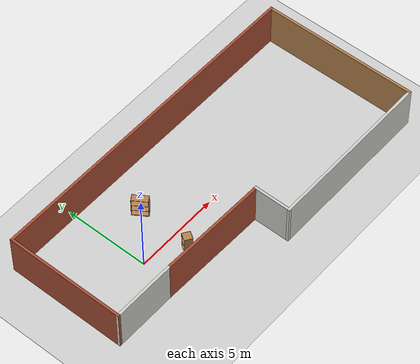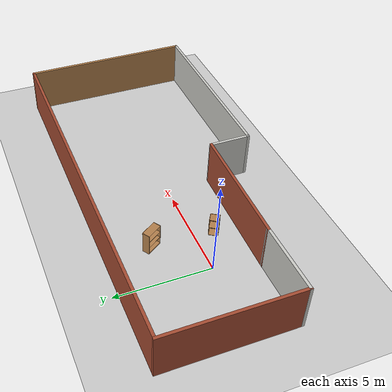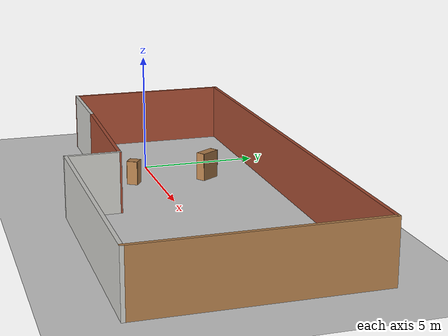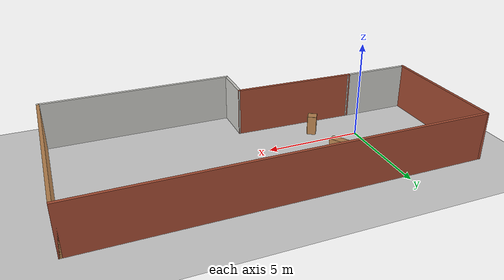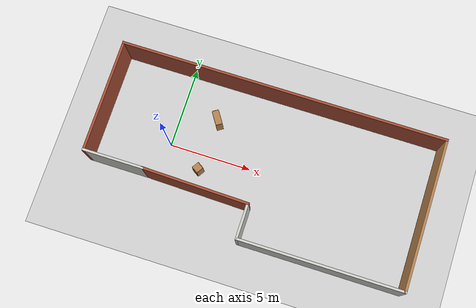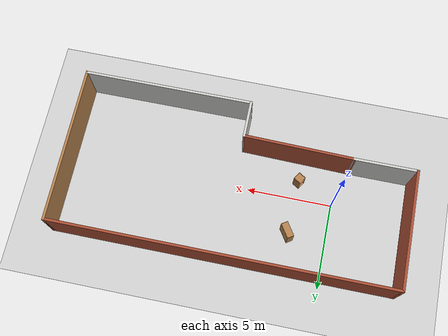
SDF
<sdf version="1.6">
 <world name="default">
  <light name="sun" type="directional">
   <pose>0 0 10 0 -0 0</pose>
   <diffuse>0.8 0.8 0.8 1</diffuse>
   <specular>0.2 0.2 0.2 1</specular>
   <attenuation>
    <range>1000</range>
    <constant>0.9</constant>
    <linear>0.01</linear>
    <quadratic>0.001</quadratic>
   </attenuation>
   <direction>-0.5 0.1 -0.9</direction>
  </light>
  <model name="ground_plane">
   <static>1</static>
   <link name="link">
    <collision name="collision">
     <geometry><plane><normal>0 0 1</normal><size>100 100</size></plane></geometry>
     <surface><friction><ode><mu>100</mu><mu2>50</mu2></ode></friction></surface>
    </collision>
    <visual name="visual">
     <cast_shadows>0</cast_shadows>
     <geometry><plane><normal>0 0 1</normal><size>100 100</size></plane></geometry>
     <material>
      <script><uri>file://media/materials/scripts/gazebo.material</uri><name>Gazebo/Grey</name></script>
     </material>
    </visual>
   </link>
  </model>
  <gravity>0 0 -9.8</gravity>
  <magnetic_field>6e-06 2.3e-05 -4.2e-05</magnetic_field>
  <atmosphere type="adiabatic"/>
  <physics name="default_physics" default="0" type="ode">
   <max_step_size>0.001</max_step_size>
   <real_time_factor>1</real_time_factor>
   <real_time_update_rate>1000</real_time_update_rate>
  </physics>
  <scene><ambient>0.4 0.4 0.4 1</ambient><background>0.7 0.7 0.7 1</background><shadows>1</shadows></scene>
  <spherical_coordinates>
   <surface_model>EARTH_WGS84</surface_model>
   <latitude_deg>0</latitude_deg>
   <longitude_deg>0</longitude_deg>
   <elevation>0</elevation>
   <heading_deg>0</heading_deg>
  </spherical_coordinates>
  <model name="111">
   <pose>5.655 0.06 0 0 -0 0</pose>
   <link name="Wall_0">
    <collision name="Wall_0_Collision">
     <geometry><box><size>3.75 0.15 2.5</size></box></geometry>
     <pose>0 0 1.25 0 -0 0</pose>
    </collision>
    <visual name="Wall_0_Visual">
     <pose>0 0 1.25 0 -0 0</pose>
     <geometry><box><size>3.75 0.15 2.5</size></box></geometry>
     <material>
      <script><uri>file://media/materials/scripts/gazebo.material</uri><name>Gazebo/CeilingTiled</name></script>
      <ambient>1 1 1 1</ambient>
     </material>
     <meta><layer>0</layer></meta>
    </visual>
    <pose>-8.125 -2.3 0 0 -0 3.14159</pose>
   </link>
   <link name="Wall_3">
    <collision name="Wall_3_Collision">
     <geometry><box><size>7 0.15 2.5</size></box></geometry>
     <pose>0 0 1.25 0 -0 0</pose>
    </collision>
    <visual name="Wall_3_Visual">
     <pose>0 0 1.25 0 -0 0</pose>
     <geometry><box><size>7 0.15 2.5</size></box></geometry>
     <material>
      <script><uri>file://media/materials/scripts/gazebo.material</uri><name>Gazebo/Bricks</name></script>
      <ambient>1 1 1 1</ambient>
     </material>
     <meta><layer>0</layer></meta>
    </visual>
    <pose>-9.925 1.125 0 0 -0 1.5708</pose>
   </link>
   <link name="Wall_4">
    <collision name="Wall_4_Collision">
     <geometry><box><size>20 0.15 2.5</size></box></geometry>
     <pose>0 0 1.25 0 -0 0</pose>
    </collision>
    <visual name="Wall_4_Visual">
     <pose>0 0 1.25 0 -0 0</pose>
     <geometry><box><size>20 0.15 2.5</size></box></geometry>
     <material>
      <script><uri>file://media/materials/scripts/gazebo.material</uri><name>Gazebo/Bricks</name></script>
      <ambient>1 1 1 1</ambient>
     </material>
     <meta><layer>0</layer></meta>
    </visual>
    <pose>0 4.55 0 0 -0 0</pose>
   </link>
   <link name="Wall_5">
    <collision name="Wall_5_Collision">
     <geometry><box><size>9.25 0.15 2.5</size></box></geometry>
     <pose>0 0 1.25 0 -0 0</pose>
    </collision>
    <visual name="Wall_5_Visual">
     <pose>0 0 1.25 0 -0 0</pose>
     <geometry><box><size>9.25 0.15 2.5</size></box></geometry>
     <material>
      <script><uri>file://media/materials/scripts/gazebo.material</uri><name>Gazebo/Wood</name></script>
      <ambient>1 1 1 1</ambient>
     </material>
     <meta><layer>0</layer></meta>
    </visual>
    <pose>9.925 0 0 0 -0 -1.5708</pose>
   </link>
   <link name="Wall_6">
    <collision name="Wall_6_Collision">
     <geometry><box><size>10 0.15 2.5</size></box></geometry>
     <pose>0 0 1.25 0 -0 0</pose>
    </collision>
    <visual name="Wall_6_Visual">
     <pose>0 0 1.25 0 -0 0</pose>
     <geometry><box><size>10 0.15 2.5</size></box></geometry>
     <material>
      <script><uri>file://media/materials/scripts/gazebo.material</uri><name>Gazebo/CeilingTiled</name></script>
      <ambient>1 1 1 1</ambient>
     </material>
     <meta><layer>0</layer></meta>
    </visual>
    <pose>5 -4.55 0 0 -0 3.14159</pose>
   </link>
   <link name="Wall_7">
    <collision name="Wall_7_Collision">
     <geometry><box><size>2.25 0.15 2.5</size></box></geometry>
     <pose>0 0 1.25 0 -0 0</pose>
    </collision>
    <visual name="Wall_7_Visual">
     <pose>0 0 1.25 0 -0 0</pose>
     <geometry><box><size>2.25 0.15 2.5</size></box></geometry>
     <material>
      <script><uri>file://media/materials/scripts/gazebo.material</uri><name>Gazebo/CeilingTiled</name></script>
      <ambient>1 1 1 1</ambient>
     </material>
     <meta><layer>0</layer></meta>
    </visual>
    <pose>0.075 -3.5 0 0 -0 1.5708</pose>
   </link>
   <link name="Wall_8">
    <collision name="Wall_8_Collision">
     <geometry><box><size>6.55176 0.15 2.5</size></box></geometry>
     <pose>0 0 1.25 0 -0 0</pose>
    </collision>
    <visual name="Wall_8_Visual">
     <pose>0 0 1.25 0 -0 0</pose>
     <geometry><box><size>6.55176 0.15 2.5</size></box></geometry>
     <material>
      <script><uri>file://media/materials/scripts/gazebo.material</uri><name>Gazebo/Bricks</name></script>
      <ambient>1 1 1 1</ambient>
     </material>
     <meta><layer>0</layer></meta>
    </visual>
    <pose>-3.125 -2.375 0 0 -0 3.11816</pose>
   </link>
   <static>1</static>
  </model>
  <model name="bookshelf">
   <static>1</static>
   <link name="link">
    <inertial><mass>1</mass></inertial>
    <collision name="back">
     <pose>0 0.005 0.6 0 -0 0</pose>
     <geometry><box><size>0.9 0.01 1.2</size></box></geometry>
    </collision>
    <visual name="visual1">
     <pose>0 0.005 0.6 0 -0 0</pose>
     <geometry><box><size>0.9 0.01 1.2</size></box></geometry>
     <material>
      <script><uri>file://media/materials/scripts/gazebo.material</uri><name>Gazebo/Wood</name></script>
     </material>
    </visual>
    <collision name="left_side">
     <pose>0.45 -0.195 0.6 0 -0 0</pose>
     <geometry><box><size>0.02 0.4 1.2</size></box></geometry>
    </collision>
    <visual name="visual2">
     <pose>0.45 -0.195 0.6 0 -0 0</pose>
     <geometry><box><size>0.02 0.4 1.2</size></box></geometry>
     <material>
      <script><uri>file://media/materials/scripts/gazebo.material</uri><name>Gazebo/Wood</name></script>
     </material>
    </visual>
    <collision name="right_side">
     <pose>-0.45 -0.195 0.6 0 -0 0</pose>
     <geometry><box><size>0.02 0.4 1.2</size></box></geometry>
    </collision>
    <visual name="visual3">
     <pose>-0.45 -0.195 0.6 0 -0 0</pose>
     <geometry><box><size>0.02 0.4 1.2</size></box></geometry>
     <material>
      <script><uri>file://media/materials/scripts/gazebo.material</uri><name>Gazebo/Wood</name></script>
     </material>
    </visual>
    <collision name="bottom">
     <pose>0 -0.195 0.03 0 -0 0</pose>
     <geometry><box><size>0.88 0.4 0.06</size></box></geometry>
    </collision>
    <visual name="visual4">
     <pose>0 -0.195 0.03 0 -0 0</pose>
     <geometry><box><size>0.88 0.4 0.06</size></box></geometry>
     <material>
      <script><uri>file://media/materials/scripts/gazebo.material</uri><name>Gazebo/Wood</name></script>
     </material>
    </visual>
    <collision name="top">
     <pose>0 -0.195 1.19 0 -0 0</pose>
     <geometry><box><size>0.88 0.4 0.02</size></box></geometry>
    </collision>
    <visual name="visual5">
     <pose>0 -0.195 1.19 0 -0 0</pose>
     <geometry><box><size>0.88 0.4 0.02</size></box></geometry>
     <material>
      <script><uri>file://media/materials/scripts/gazebo.material</uri><name>Gazebo/Wood</name></script>
     </material>
    </visual>
    <collision name="low_shelf">
     <pose>0 -0.195 0.43 0 -0 0</pose>
     <geometry><box><size>0.88 0.4 0.02</size></box></geometry>
    </collision>
    <visual name="visual6">
     <pose>0 -0.195 0.43 0 -0 0</pose>
     <geometry><box><size>0.88 0.4 0.02</size></box></geometry>
     <material>
      <script><uri>file://media/materials/scripts/gazebo.material</uri><name>Gazebo/Wood</name></script>
     </material>
    </visual>
    <collision name="high_shelf">
     <pose>0 -0.195 0.8 0 -0 0</pose>
     <geometry><box><size>0.88 0.4 0.02</size></box></geometry>
    </collision>
    <visual name="visual7">
     <pose>0 -0.195 0.8 0 -0 0</pose>
     <geometry><box><size>0.88 0.4 0.02</size></box></geometry>
     <material>
      <script><uri>file://media/materials/scripts/gazebo.material</uri><name>Gazebo/Wood</name></script>
     </material>
    </visual>
   </link>
   <pose>2.45203 2.32912 0 0 0 -0.989317</pose>
  </model>
  <model name="cabinet">
   <static>1</static>
   <link name="cabinet_bottom_plate">
    <inertial>
     <pose>0 0 -1 0 -0 0</pose>
     <inertia><ixx>2.05</ixx><ixy>0</ixy><ixz>0</ixz><iyy>2.05</iyy><iyz>0</iyz><izz>2.05</izz></inertia>
     <mass>25</mass>
    </inertial>
    <collision name="cabinet_bottom_plate_geom">
     <pose>0 0 0.01 0 -0 0</pose>
     <geometry><box><size>0.45 0.45 0.02</size></box></geometry>
    </collision>
    <visual name="cabinet_bottom_plate_geom_visual">
     <pose>0 0 0.01 0 -0 0</pose>
     <geometry><box><size>0.45 0.45 0.02</size></box></geometry>
     <material>
      <script><uri>file://media/materials/scripts/gazebo.material</uri><name>Gazebo/Wood</name></script>
     </material>
    </visual>
    <collision name="cabinet_bottom_plate_geom_cabinet_back_plate">
     <pose>0.235 0 0.51 0 -0 0</pose>
     <geometry><box><size>0.02 0.45 1.02</size></box></geometry>
    </collision>
    <visual name="cabinet_bottom_plate_geom_cabinet_back_plate_visual">
     <pose>0.235 0 0.51 0 -0 0</pose>
     <geometry><box><size>0.02 0.45 1.02</size></box></geometry>
     <material>
      <script><uri>file://media/materials/scripts/gazebo.material</uri><name>Gazebo/Wood</name></script>
     </material>
    </visual>
    <collision name="cabinet_bottom_plate_geom_cabinet_left_plate">
     <pose>0 0.235 0.51 0 -0 0</pose>
     <geometry><box><size>0.45 0.02 1.02</size></box></geometry>
    </collision>
    <visual name="cabinet_bottom_plate_geom_cabinet_left_plate_visual">
     <pose>0 0.235 0.51 0 -0 0</pose>
     <geometry><box><size>0.45 0.02 1.02</size></box></geometry>
     <material>
      <script><uri>file://media/materials/scripts/gazebo.material</uri><name>Gazebo/Wood</name></script>
     </material>
    </visual>
    <collision name="cabinet_bottom_plate_geom_cabinet_middle_plate">
     <pose>0 0 0.51 0 -0 0</pose>
     <geometry><box><size>0.45 0.45 0.02</size></box></geometry>
    </collision>
    <visual name="cabinet_bottom_plate_geom_cabinet_middle_plate_visual">
     <pose>0 0 0.51 0 -0 0</pose>
     <geometry><box><size>0.45 0.45 0.02</size></box></geometry>
     <material>
      <script><uri>file://media/materials/scripts/gazebo.material</uri><name>Gazebo/Wood</name></script>
     </material>
    </visual>
    <collision name="cabinet_bottom_plate_geom_cabinet_right_plate">
     <pose>0 -0.235 0.51 0 -0 0</pose>
     <geometry><box><size>0.45 0.02 1.02</size></box></geometry>
    </collision>
    <visual name="cabinet_bottom_plate_geom_cabinet_right_plate_visual">
     <pose>0 -0.235 0.51 0 -0 0</pose>
     <geometry><box><size>0.45 0.02 1.02</size></box></geometry>
     <material>
      <script><uri>file://media/materials/scripts/gazebo.material</uri><name>Gazebo/Wood</name></script>
     </material>
    </visual>
    <collision name="cabinet_bottom_plate_geom_cabinet_top_plate">
     <pose>0 0 1.01 0 -0 0</pose>
     <geometry><box><size>0.45 0.45 0.02</size></box></geometry>
    </collision>
    <visual name="cabinet_bottom_plate_geom_cabinet_top_plate_visual">
     <pose>0 0 1.01 0 -0 0</pose>
     <geometry><box><size>0.45 0.45 0.02</size></box></geometry>
     <material>
      <script><uri>file://media/materials/scripts/gazebo.material</uri><name>Gazebo/Wood</name></script>
     </material>
    </visual>
   </link>
   <pose>2.11987 -1.00593 0 0 0 -0.574941</pose>
  </model>
 </world>
</sdf>
